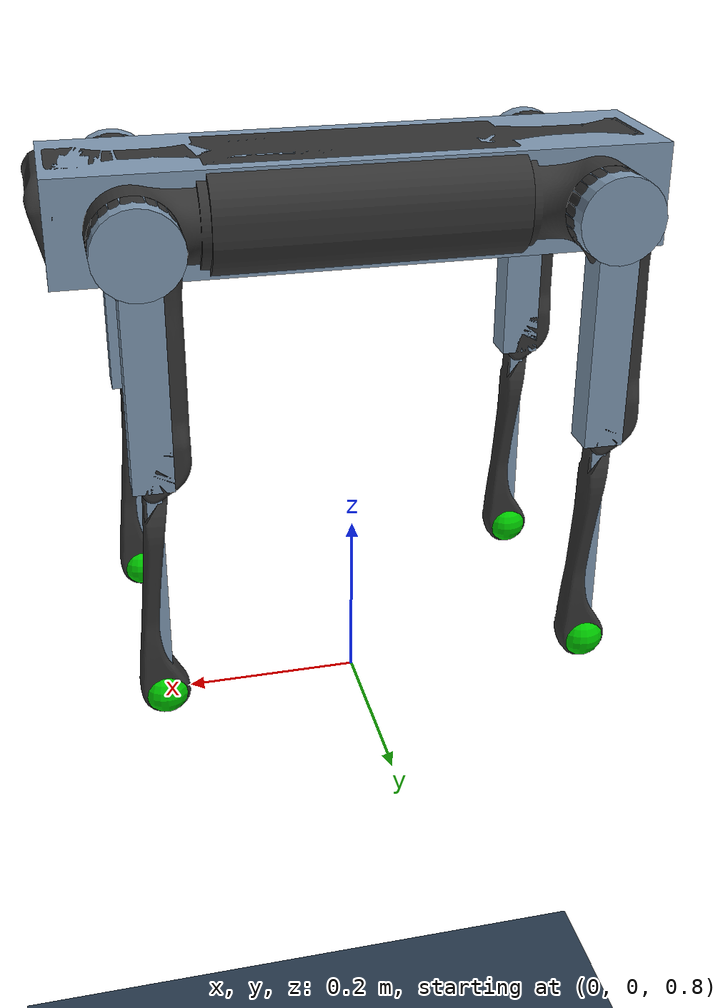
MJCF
<mujoco model="aliengo_description_scene">

    <include file="aliengo.xml" />

    <asset>
        <texture name="texplane" type="2d" builtin="checker" rgb1=".2 .3 .4" rgb2=".1 0.15 0.2" width="512" height="512" mark="cross" markrgb=".8 .8 .8"/>
        <material name="matplane" reflectance="0.3" texture="texplane" texrepeat="1 1" texuniform="true"/>
    </asset>

    <worldbody>
        <light pos="0 0 3" dir="0 0 -1"  directional="false"/>
        <geom name="floor" pos="0 0 0" size="0 0 .25" type="plane" material="matplane" condim="3" group="1" />
    </worldbody>
</mujoco>

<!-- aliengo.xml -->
<mujoco model="aliengo_description">
    <compiler angle="radian" meshdir="../meshes" />
    <size njmax="500" nconmax="100" nuser_actuator="1" />

    <option timestep="0.001" iterations="50" tolerance="1e-10" solver="Newton" jacobian="dense" cone="elliptic" impratio="100" />

    <default>
        <joint damping="2" armature="0.01" frictionloss="0.2" />
        <motor ctrllimited="false" forcelimited="false"/>
	<default class="collision">
          <geom condim="3" friction="0.6 0.3 0.3" rgba="0.5 0.6 0.7 1" group="0" />
	</default>
	<default class="visual">
          <geom condim="3" type="mesh" group="1" conaffinity="0" contype="0" rgba="0.2 0.2 0.2 1" />
	</default>
    </default>

    <visual>
        <map force="0.01" zfar="30"/>
        <rgba haze="0.15 0.25 0.35 1"/>
        <quality shadowsize="2048"/>
        <global offwidth="800" offheight="800"/>
    </visual>

    <asset>
        <mesh name="trunk_mesh" file="trunk.stl" />
        <mesh name="hip_mesh" file="hip.stl" />
        <mesh name="thigh_mirror_mesh" file="thigh_mirror.stl" />
	<mesh name="calf_mesh" file="calf.stl" />
        <mesh name="thigh_mesh" file="thigh.stl" />

        <texture type="skybox" builtin="gradient" rgb1="0.3 0.5 0.7" rgb2="0 0 0" width="512" height="512"/>
    </asset>

    <worldbody>
        <light directional="false" diffuse=".2 .2 .2" specular="0 0 0" pos="0 0 5" dir="0 0 -1" castshadow="false"/>
        <light mode="targetbodycom" target="trunk" directional="false" diffuse=".8 .8 .8" specular="0.3 0.3 0.3" pos="0 0 4.0" dir="0 0 -1"/>

	<!-- trunk -->
        <body name="trunk" pos="0 0 1.4">
            <inertial pos="0.00846406 0.00404455 -0.000762916" quat="-3.12625e-05 0.708321 0.00247254 0.705886" mass="9.042" diaginertia="0.174706 0.161175 0.033357" />
            <freejoint name="root"/>
            <geom class="collision" size="0.3235 0.075 0.056" type="box" />
	    <geom class="visual" mesh="trunk_mesh" />
	    <!-- site for root imu sensor -->
            <site name="imu" size="0.0005 0.0005 0.0005" pos="0 0 0" />
	    <!-- front right -->
	    <body name="FR_hip" pos="0.2399 -0.051 0">
		<inertial pos="-0.022191 -0.015144 -1.5e-05" quat="0.0135493 0.706835 -0.0117635 0.707151" mass="1.993" diaginertia="0.00558695 0.00491009 0.00290132" />
		<joint name="FR_hip_joint" axis="1 0 0" limited="true" range="-1.22173 1.22173" />
		<geom class="collision" size="0.046 0.0209" pos="0 -0.083 0" quat="0.707107 0.707107 0 0" type="cylinder" />
		<geom class="visual"  quat="0 1 0 0" mesh="hip_mesh" />
		<body name="FR_thigh" pos="0 -0.083 0">
		    <inertial pos="-0.005607 0.003877 -0.048199" quat="0.694544 -0.0335669 -0.031246 0.717987" mass="0.639" diaginertia="0.0058474 0.00571186 0.000324584" />
		    <joint name="FR_thigh_joint" axis="0 1 0" limited="false" />
		    <geom class="collision" size="0.125 0.0187 0.0215" pos="0 0 -0.125" quat="0.707107 0 0.707107 0" type="box" />
		    <geom class="visual" mesh="thigh_mirror_mesh" />
		    <body name="FR_calf" pos="0 0 -0.25">
			<inertial pos="0.00215606 4.88427e-05 -0.166671" quat="0.707462 0.00517582 0.00535172 0.706712" mass="0.267" diaginertia="0.00690975 0.00689712 5.4885e-05" />
			<joint name="FR_calf_joint" axis="0 1 0" limited="true" range="-2.77507 -0.645772" />
			<geom class="collision" size="0.125 0.0104 0.008" pos="0 0 -0.125" quat="0.707107 0 0.707107 0" type="box" />
			<geom class="visual" mesh="calf_mesh" />
			<body name="FR_foot" pos="0 0 -0.25">
			    <geom class="collision" size="0.0265" pos="0 0 0" rgba="0 0.8 0 1" type="sphere" />
			</body>
		    </body>
		</body>
	    </body>
	    <!-- front left -->
	    <body name="FL_hip" pos="0.2399 0.051 0">
		<inertial pos="-0.022191 0.015144 -1.5e-05" quat="-0.0135493 0.706835 0.0117635 0.707151" mass="1.993" diaginertia="0.00558695 0.00491009 0.00290132" />
		<joint name="FL_hip_joint" axis="1 0 0" limited="true" range="-1.22173 1.22173" />
		<geom class="collision" size="0.046 0.0209" pos="0 0.083 0" quat="0.707107 0.707107 0 0" type="cylinder" />
		<geom class="visual" quat="1 0 0 0" mesh="hip_mesh" />
		<body name="FL_thigh" pos="0 0.083 0">
		    <inertial pos="-0.005607 -0.003877 -0.048199" quat="0.717987 -0.031246 -0.0335669 0.694544" mass="0.639" diaginertia="0.0058474 0.00571186 0.000324584" />
		    <joint name="FL_thigh_joint" axis="0 1 0" limited="false" />
		    <geom class="collision" size="0.125 0.0187 0.0215" pos="0 0 -0.125" quat="0.707107 0 0.707107 0" type="box" />
		    <geom class="visual" mesh="thigh_mesh" />
		    <body name="FL_calf" pos="0 0 -0.25">
			<inertial pos="0.00215606 4.88427e-05 -0.166671" quat="0.707462 0.00517582 0.00535172 0.706712" mass="0.267" diaginertia="0.00690975 0.00689712 5.4885e-05" />
			<joint name="FL_calf_joint" axis="0 1 0" limited="true" range="-2.77507 -0.645772" />
			<geom class="collision" size="0.125 0.0104 0.008" pos="0 0 -0.125" quat="0.707107 0 0.707107 0" type="box" />
			<geom class="visual" mesh="calf_mesh" />
			<body name="FL_foot" pos="0 0 -0.25">
			    <geom class="collision" size="0.0265" pos="0 0 0" rgba="0 0.8 0 1" type="sphere" />
			</body>
		    </body>
		</body>
	    </body>
	    <!-- rear right -->
	    <body name="RR_hip" pos="-0.2399 -0.051 0">
		<inertial pos="0.022191 -0.015144 -1.5e-05" quat="-0.0117635 0.707151 0.0135493 0.706835" mass="1.993" diaginertia="0.00558695 0.00491009 0.00290132" />
		<joint name="RR_hip_joint" axis="1 0 0" limited="true" range="-1.22173 1.22173" />
		<geom class="collision" size="0.046 0.0209" pos="0 -0.083 0" quat="0.707107 0.707107 0 0" type="cylinder" />
		<geom class="visual" quat="0 0 0 -1" mesh="hip_mesh" />
		<body name="RR_thigh" pos="0 -0.083 0">
		    <inertial pos="-0.005607 0.003877 -0.048199" quat="0.694544 -0.0335669 -0.031246 0.717987" mass="0.639" diaginertia="0.0058474 0.00571186 0.000324584" />
		    <joint name="RR_thigh_joint" axis="0 1 0" limited="false" />
		    <geom class="collision" size="0.125 0.0187 0.0215" pos="0 0 -0.125" quat="0.707107 0 0.707107 0" type="box" />
		    <geom class="visual" mesh="thigh_mirror_mesh" />
		    <body name="RR_calf" pos="0 0 -0.25">
			<inertial pos="0.00215606 4.88427e-05 -0.166671" quat="0.707462 0.00517582 0.00535172 0.706712" mass="0.267" diaginertia="0.00690975 0.00689712 5.4885e-05" />
			<joint name="RR_calf_joint" axis="0 1 0" limited="true" range="-2.77507 -0.645772" />
			<geom class="collision" size="0.125 0.0104 0.008" pos="0 0 -0.125" quat="0.707107 0 0.707107 0" type="box" />
			<geom class="visual" mesh="calf_mesh" />
			<body name="RR_foot" pos="0 0 -0.25">
			    <geom class="collision" size="0.0265" pos="0 0 0" rgba="0 0.8 0 1" type="sphere" />
			</body>
		    </body>
		</body>
	    </body>
	    <!-- rear left -->
	    <body name="RL_hip" pos="-0.2399 0.051 0">
		<inertial pos="0.022191 0.015144 -1.5e-05" quat="0.0117635 0.707151 -0.0135493 0.706835" mass="1.993" diaginertia="0.00558695 0.00491009 0.00290132" />
		<joint name="RL_hip_joint" axis="1 0 0" limited="true" range="-1.22173 1.22173" />
		<geom class="collision" size="0.046 0.0209" pos="0 0.083 0" quat="0.707107 0.707107 0 0" type="cylinder" />
		<geom class="visual" quat="0 0 1 0" mesh="hip_mesh" />
		<body name="RL_thigh" pos="0 0.083 0">
		    <inertial pos="-0.005607 -0.003877 -0.048199" quat="0.717987 -0.031246 -0.0335669 0.694544" mass="0.639" diaginertia="0.0058474 0.00571186 0.000324584" />
		    <joint name="RL_thigh_joint" axis="0 1 0" limited="false" />
		    <geom class="collision" size="0.125 0.0187 0.0215" pos="0 0 -0.125" quat="0.707107 0 0.707107 0" type="box" />
		    <geom class="visual" mesh="thigh_mesh" />
		    <body name="RL_calf" pos="0 0 -0.25">
			<inertial pos="0.00215606 4.88427e-05 -0.166671" quat="0.707462 0.00517582 0.00535172 0.706712" mass="0.267" diaginertia="0.00690975 0.00689712 5.4885e-05" />
			<joint name="RL_calf_joint" axis="0 1 0" limited="true" range="-2.77507 -0.645772" />
			<geom class="collision" size="0.125 0.0104 0.008" pos="0 0 -0.125" quat="0.707107 0 0.707107 0" type="box" />
			<geom class="visual" mesh="calf_mesh" />
			<body name="RL_foot" pos="0 0 -0.25">
			    <geom class="collision" size="0.0265" pos="0 0 0" rgba="0 0.8 0 1" type="sphere" />
			</body>
		    </body>
		</body>
	    </body>
	</body>
    </worldbody>

    <actuator>
        <!-- FR leg -->
        <motor name="FR_hip_motor" joint="FR_hip_joint" />
        <motor name="FR_thigh_motor" joint="FR_thigh_joint" />
        <motor name="FR_calf_motor" joint="FR_calf_joint" />
        <!-- FL leg -->
        <motor name="FL_hip_motor" joint="FL_hip_joint" />
        <motor name="FL_thigh_motor" joint="FL_thigh_joint" />
        <motor name="FL_calf_motor" joint="FL_calf_joint" />
        <!-- RR leg -->
        <motor name="RR_hip_motor" joint="RR_hip_joint" />
        <motor name="RR_thigh_motor" joint="RR_thigh_joint" />
        <motor name="RR_calf_motor" joint="RR_calf_joint" />
        <!-- RL leg -->
        <motor name="RL_hip_motor" joint="RL_hip_joint" />
        <motor name="RL_thigh_motor" joint="RL_thigh_joint" />
        <motor name="RL_calf_motor" joint="RL_calf_joint" />
    </actuator>

    <sensor>
	<!-- imu -->
	<gyro          name="Accelerometer_gyro"     site="imu" />
	<accelerometer name="Accelerometer_accelerometer"    site="imu" />
    </sensor>

</mujoco>
